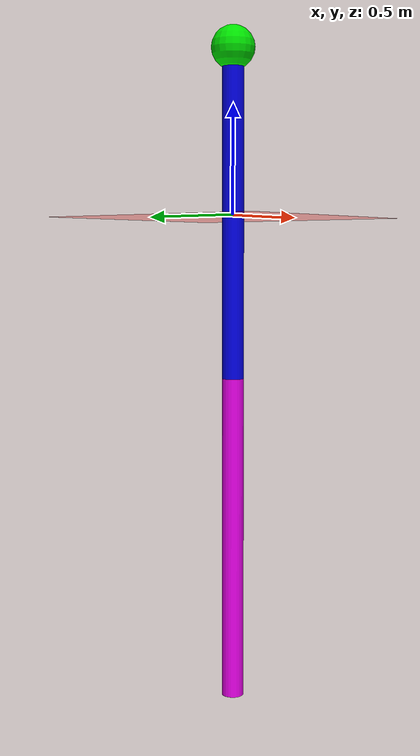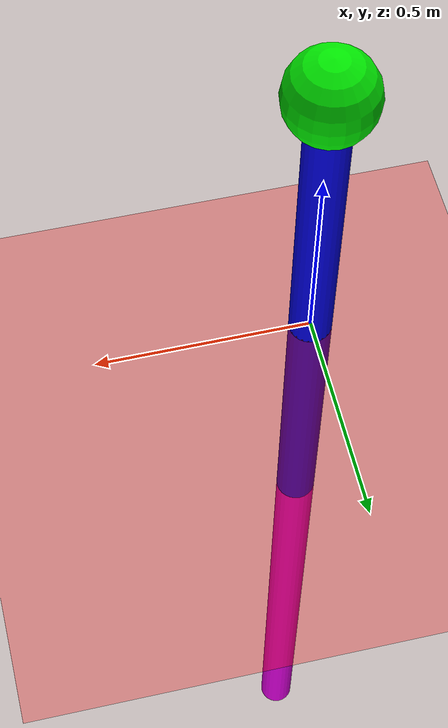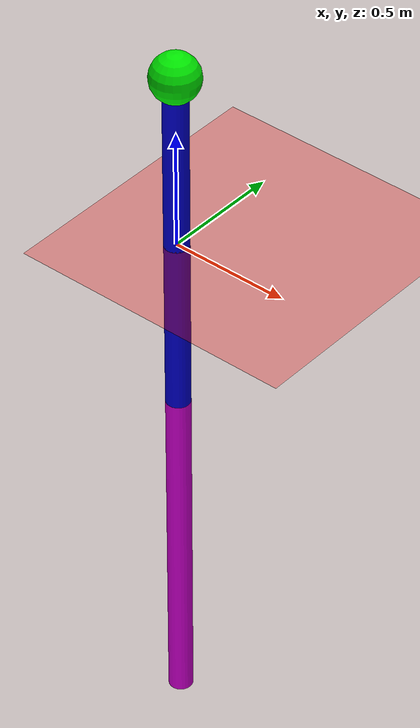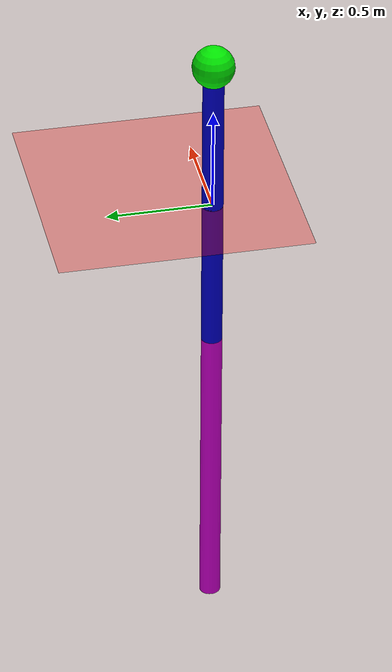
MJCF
<mujoco>
  <option timestep="0.0001" integrator="RK4">
  </option>
  <worldbody>
    <light diffuse=".5 .5 .5" pos="0 0 3" dir="0 0 -1"/>
    <geom type="plane" size="1 1 0.1" rgba=".9 0 0 1"/>

    <body pos="0 0 0" euler="0 0 0">
      <joint name="torso_x" type="slide" axis="1 0 0" pos="0 0 0"/>  <!-- x-direction sliding -->
      <joint name="torso_z" type="slide" axis="0 0 1" pos="0 0 0"/>  <!-- z-direction sliding -->
      <joint name="pin2" type="hinge" axis = "0 -1 0" pos="0 0 0"/>
      <geom type="cylinder" size="0.05 0.75" rgba="0 0 .9 1" mass="0.15"/>

      <body pos="0 0 -1.5" euler="0 0 0">
        <joint name="pin3" type="hinge" axis = "0 -1 0" pos="0 0 0.75"/>
        <geom type="cylinder" size="0.05 0.75" rgba=".9 0 .9 1" mass="0.15"/>
      </body>

      <body name="torso" pos="0 0 0.75" euler="0 0 0">
        <!-- Sliding joints to constrain torso to x-z plane -->
        <joint name="torso_rot" type="hinge" axis="0 1 0" pos="0 0 0"/> <!-- rotation around y-axis -->
        <geom type="sphere" size="0.1" rgba="0 .9 0 1" mass="0.8"/>
      </body>
    </body>

    <body name="marker_body" mocap="true" pos="0 0 0">
       <site name="target_position" pos="0 0 0" size="0.05" rgba="1 0 0 0.8" type="sphere"/>
    </body>

  </worldbody>
  <actuator>

    <!-- Actuators for the sliding joints -->
    <motor joint="torso_x" name="torso_x_motor" gear="1" ctrllimited="true" ctrlrange="-100 100"/>
    <motor joint="torso_z" name="torso_z_motor" gear="1" ctrllimited="true" ctrlrange="-100 100"/>

    <!-- Actuators for the leg joints -->
    <motor joint="pin2" name="pin2_motor" gear="1" ctrllimited="true" ctrlrange="-100 100"/>
    <motor joint="pin3" name="pin3_motor" gear="1" ctrllimited="true" ctrlrange="-100 100"/>
    <motor joint="torso_rot" name="torso_rot_motor" gear="1" ctrllimited="true" ctrlrange="-100 100"/>

  </actuator>
</mujoco>
